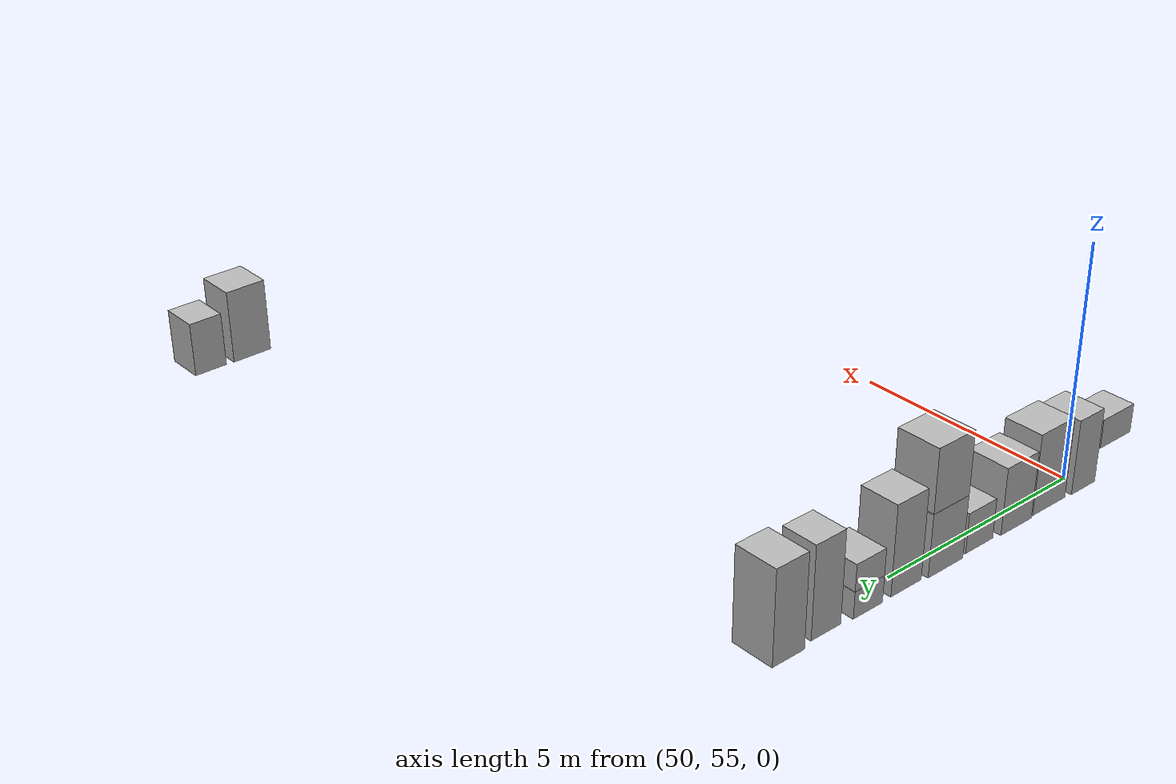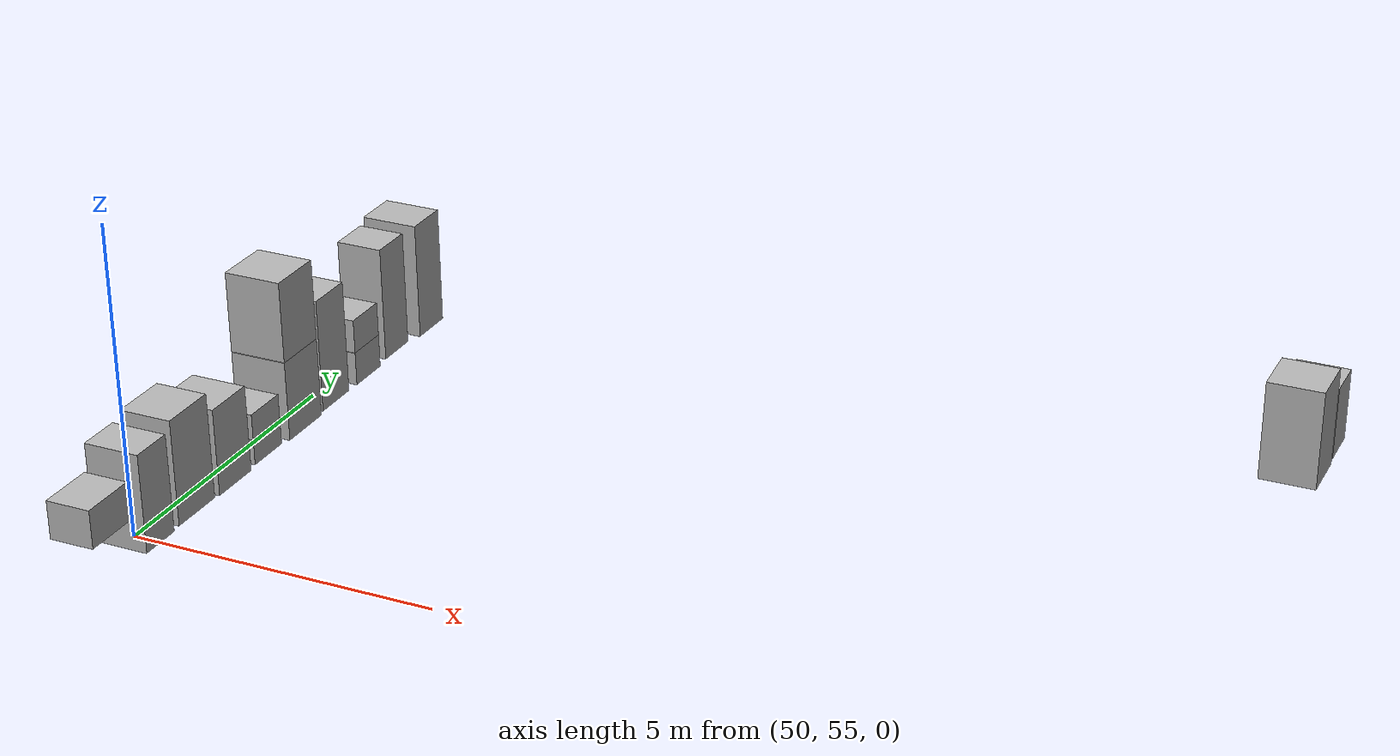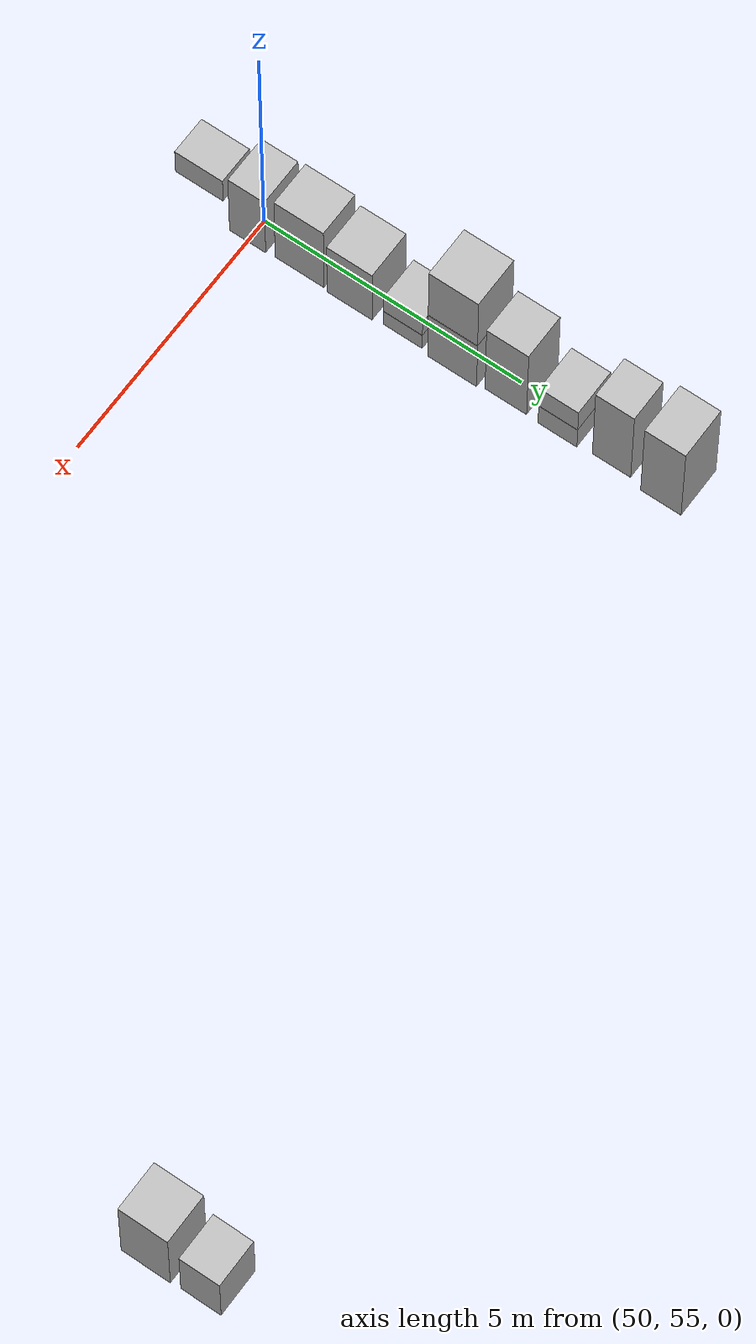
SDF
<sdf version="1.5">
 <world name="default">
  <model name="ground_plane">
   <static>true</static>
   <link name="link">
    <collision name="collision">
     <geometry><plane><normal>0 0 1</normal><size>250 250</size></plane></geometry>
     <surface><friction><ode><mu>1</mu><mu2>1</mu2></ode></friction></surface>
    </collision>
    <visual name="grass">
     <cast_shadows>false</cast_shadows>
     <geometry><mesh><uri>file://grass_plane/meshes/grass_plane.dae</uri></mesh></geometry>
    </visual>
   </link>
  </model>
  <model name="Cardboard_box_top_649">
   <link name="link_0">
    <pose>50 54 0.628202009845 0 0 0</pose>
    <inertial>
     <mass>1</mass>
     <inertia>
      <ixx>0.166667</ixx>
      <ixy>0</ixy>
      <ixz>0</ixz>
      <iyy>0.166667</iyy>
      <iyz>0</iyz>
      <izz>0.166667</izz>
     </inertia>
    </inertial>
    <collision name="collision">
     <geometry>
      <mesh>
       <uri>model://Cardboard_box/meshes/cardboard_box.dae</uri>
       <scale>1.8310984928 2.35704234418 1.57050502461</scale>
      </mesh>
     </geometry>
    </collision>
    <visual name="visual">
     <geometry>
      <mesh>
       <uri>model://Cardboard_box/meshes/cardboard_box.dae</uri>
       <scale>1.8310984928 2.35704234418 1.57050502461</scale>
      </mesh>
     </geometry>
    </visual>
   </link>
   <static>1</static>
  </model>
  <model name="Cardboard_box_650">
   <link name="link_0">
    <pose>50 55 0 0 0 0</pose>
    <inertial>
     <mass>1</mass>
     <inertia>
      <ixx>0.166667</ixx>
      <ixy>0</ixy>
      <ixz>0</ixz>
      <iyy>0.166667</iyy>
      <iyz>0</iyz>
      <izz>0.166667</izz>
     </inertia>
    </inertial>
    <collision name="collision">
     <geometry>
      <mesh>
       <uri>model://Cardboard_box/meshes/cardboard_box.dae</uri>
       <scale>2.28649709088 1.7889408172 4.07227117605</scale>
      </mesh>
     </geometry>
    </collision>
    <visual name="visual">
     <geometry>
      <mesh>
       <uri>model://Cardboard_box/meshes/cardboard_box.dae</uri>
       <scale>2.28649709088 1.7889408172 4.07227117605</scale>
      </mesh>
     </geometry>
    </visual>
   </link>
   <static>1</static>
  </model>
  <model name="Cardboard_box_651">
   <link name="link_0">
    <pose>50 56 0 0 0 0</pose>
    <inertial>
     <mass>1</mass>
     <inertia>
      <ixx>0.166667</ixx>
      <ixy>0</ixy>
      <ixz>0</ixz>
      <iyy>0.166667</iyy>
      <iyz>0</iyz>
      <izz>0.166667</izz>
     </inertia>
    </inertial>
    <collision name="collision">
     <geometry>
      <mesh>
       <uri>model://Cardboard_box/meshes/cardboard_box.dae</uri>
       <scale>2.15359185107 2.4092845548 4.40512411547</scale>
      </mesh>
     </geometry>
    </collision>
    <visual name="visual">
     <geometry>
      <mesh>
       <uri>model://Cardboard_box/meshes/cardboard_box.dae</uri>
       <scale>2.15359185107 2.4092845548 4.40512411547</scale>
      </mesh>
     </geometry>
    </visual>
   </link>
   <static>1</static>
  </model>
  <model name="Cardboard_box_652">
   <link name="link_0">
    <pose>50 57 0 0 0 0</pose>
    <inertial>
     <mass>1</mass>
     <inertia>
      <ixx>0.166667</ixx>
      <ixy>0</ixy>
      <ixz>0</ixz>
      <iyy>0.166667</iyy>
      <iyz>0</iyz>
      <izz>0.166667</izz>
     </inertia>
    </inertial>
    <collision name="collision">
     <geometry>
      <mesh>
       <uri>model://Cardboard_box/meshes/cardboard_box.dae</uri>
       <scale>2.31922763138 2.21604029452 3.63841716033</scale>
      </mesh>
     </geometry>
    </collision>
    <visual name="visual">
     <geometry>
      <mesh>
       <uri>model://Cardboard_box/meshes/cardboard_box.dae</uri>
       <scale>2.31922763138 2.21604029452 3.63841716033</scale>
      </mesh>
     </geometry>
    </visual>
   </link>
   <static>1</static>
  </model>
  <model name="Cardboard_box_653">
   <link name="link_0">
    <pose>50 58 0 0 0 0</pose>
    <inertial>
     <mass>1</mass>
     <inertia>
      <ixx>0.166667</ixx>
      <ixy>0</ixy>
      <ixz>0</ixz>
      <iyy>0.166667</iyy>
      <iyz>0</iyz>
      <izz>0.166667</izz>
     </inertia>
    </inertial>
    <collision name="collision">
     <geometry>
      <mesh>
       <uri>model://Cardboard_box/meshes/cardboard_box.dae</uri>
       <scale>2.09966503034 1.91816227631 1.07750691621</scale>
      </mesh>
     </geometry>
    </collision>
    <visual name="visual">
     <geometry>
      <mesh>
       <uri>model://Cardboard_box/meshes/cardboard_box.dae</uri>
       <scale>2.09966503034 1.91816227631 1.07750691621</scale>
      </mesh>
     </geometry>
    </visual>
   </link>
   <static>1</static>
  </model>
  <model name="Cardboard_box_top_653">
   <link name="link_0">
    <pose>50 58 0.431002766482 0 0 0</pose>
    <inertial>
     <mass>1</mass>
     <inertia>
      <ixx>0.166667</ixx>
      <ixy>0</ixy>
      <ixz>0</ixz>
      <iyy>0.166667</iyy>
      <iyz>0</iyz>
      <izz>0.166667</izz>
     </inertia>
    </inertial>
    <collision name="collision">
     <geometry>
      <mesh>
       <uri>model://Cardboard_box/meshes/cardboard_box.dae</uri>
       <scale>2.09966503034 1.91816227631 1.07750691621</scale>
      </mesh>
     </geometry>
    </collision>
    <visual name="visual">
     <geometry>
      <mesh>
       <uri>model://Cardboard_box/meshes/cardboard_box.dae</uri>
       <scale>2.09966503034 1.91816227631 1.07750691621</scale>
      </mesh>
     </geometry>
    </visual>
   </link>
   <static>1</static>
  </model>
  <model name="Cardboard_box_654">
   <link name="link_0">
    <pose>50 59 0 0 0 0</pose>
    <inertial>
     <mass>1</mass>
     <inertia>
      <ixx>0.166667</ixx>
      <ixy>0</ixy>
      <ixz>0</ixz>
      <iyy>0.166667</iyy>
      <iyz>0</iyz>
      <izz>0.166667</izz>
     </inertia>
    </inertial>
    <collision name="collision">
     <geometry>
      <mesh>
       <uri>model://Cardboard_box/meshes/cardboard_box.dae</uri>
       <scale>2.39934264226 2.37520904949 3.37899875647</scale>
      </mesh>
     </geometry>
    </collision>
    <visual name="visual">
     <geometry>
      <mesh>
       <uri>model://Cardboard_box/meshes/cardboard_box.dae</uri>
       <scale>2.39934264226 2.37520904949 3.37899875647</scale>
      </mesh>
     </geometry>
    </visual>
   </link>
   <static>1</static>
  </model>
  <model name="Cardboard_box_top_654">
   <link name="link_0">
    <pose>50 59 1.35159950259 0 0 0</pose>
    <inertial>
     <mass>1</mass>
     <inertia>
      <ixx>0.166667</ixx>
      <ixy>0</ixy>
      <ixz>0</ixz>
      <iyy>0.166667</iyy>
      <iyz>0</iyz>
      <izz>0.166667</izz>
     </inertia>
    </inertial>
    <collision name="collision">
     <geometry>
      <mesh>
       <uri>model://Cardboard_box/meshes/cardboard_box.dae</uri>
       <scale>2.39934264226 2.37520904949 3.37899875647</scale>
      </mesh>
     </geometry>
    </collision>
    <visual name="visual">
     <geometry>
      <mesh>
       <uri>model://Cardboard_box/meshes/cardboard_box.dae</uri>
       <scale>2.39934264226 2.37520904949 3.37899875647</scale>
      </mesh>
     </geometry>
    </visual>
   </link>
   <static>1</static>
  </model>
  <model name="Cardboard_box_655">
   <link name="link_0">
    <pose>50 60 0 0 0 0</pose>
    <inertial>
     <mass>1</mass>
     <inertia>
      <ixx>0.166667</ixx>
      <ixy>0</ixy>
      <ixz>0</ixz>
      <iyy>0.166667</iyy>
      <iyz>0</iyz>
      <izz>0.166667</izz>
     </inertia>
    </inertial>
    <collision name="collision">
     <geometry>
      <mesh>
       <uri>model://Cardboard_box/meshes/cardboard_box.dae</uri>
       <scale>2.15204382087 2.01277561581 4.83170556</scale>
      </mesh>
     </geometry>
    </collision>
    <visual name="visual">
     <geometry>
      <mesh>
       <uri>model://Cardboard_box/meshes/cardboard_box.dae</uri>
       <scale>2.15204382087 2.01277561581 4.83170556</scale>
      </mesh>
     </geometry>
    </visual>
   </link>
   <static>1</static>
  </model>
  <model name="Cardboard_box_656">
   <link name="link_0">
    <pose>50 61 0 0 0 0</pose>
    <inertial>
     <mass>1</mass>
     <inertia>
      <ixx>0.166667</ixx>
      <ixy>0</ixy>
      <ixz>0</ixz>
      <iyy>0.166667</iyy>
      <iyz>0</iyz>
      <izz>0.166667</izz>
     </inertia>
    </inertial>
    <collision name="collision">
     <geometry>
      <mesh>
       <uri>model://Cardboard_box/meshes/cardboard_box.dae</uri>
       <scale>2.21871606434 1.87160760017 1.43330199242</scale>
      </mesh>
     </geometry>
    </collision>
    <visual name="visual">
     <geometry>
      <mesh>
       <uri>model://Cardboard_box/meshes/cardboard_box.dae</uri>
       <scale>2.21871606434 1.87160760017 1.43330199242</scale>
      </mesh>
     </geometry>
    </visual>
   </link>
   <static>1</static>
  </model>
  <model name="Cardboard_box_top_656">
   <link name="link_0">
    <pose>50 61 0.573320796968 0 0 0</pose>
    <inertial>
     <mass>1</mass>
     <inertia>
      <ixx>0.166667</ixx>
      <ixy>0</ixy>
      <ixz>0</ixz>
      <iyy>0.166667</iyy>
      <iyz>0</iyz>
      <izz>0.166667</izz>
     </inertia>
    </inertial>
    <collision name="collision">
     <geometry>
      <mesh>
       <uri>model://Cardboard_box/meshes/cardboard_box.dae</uri>
       <scale>2.21871606434 1.87160760017 1.43330199242</scale>
      </mesh>
     </geometry>
    </collision>
    <visual name="visual">
     <geometry>
      <mesh>
       <uri>model://Cardboard_box/meshes/cardboard_box.dae</uri>
       <scale>2.21871606434 1.87160760017 1.43330199242</scale>
      </mesh>
     </geometry>
    </visual>
   </link>
   <static>1</static>
  </model>
  <model name="Cardboard_box_657">
   <link name="link_0">
    <pose>50 62 0 0 0 0</pose>
    <inertial>
     <mass>1</mass>
     <inertia>
      <ixx>0.166667</ixx>
      <ixy>0</ixy>
      <ixz>0</ixz>
      <iyy>0.166667</iyy>
      <iyz>0</iyz>
      <izz>0.166667</izz>
     </inertia>
    </inertial>
    <collision name="collision">
     <geometry>
      <mesh>
       <uri>model://Cardboard_box/meshes/cardboard_box.dae</uri>
       <scale>1.97526737373 1.83735151612 4.9353175351</scale>
      </mesh>
     </geometry>
    </collision>
    <visual name="visual">
     <geometry>
      <mesh>
       <uri>model://Cardboard_box/meshes/cardboard_box.dae</uri>
       <scale>1.97526737373 1.83735151612 4.9353175351</scale>
      </mesh>
     </geometry>
    </visual>
   </link>
   <static>1</static>
  </model>
  <model name="Cardboard_box_658">
   <link name="link_0">
    <pose>50 63 0 0 0 0</pose>
    <inertial>
     <mass>1</mass>
     <inertia>
      <ixx>0.166667</ixx>
      <ixy>0</ixy>
      <ixz>0</ixz>
      <iyy>0.166667</iyy>
      <iyz>0</iyz>
      <izz>0.166667</izz>
     </inertia>
    </inertial>
    <collision name="collision">
     <geometry>
      <mesh>
       <uri>model://Cardboard_box/meshes/cardboard_box.dae</uri>
       <scale>2.42535351557 1.93363019875 5.02807969639</scale>
      </mesh>
     </geometry>
    </collision>
    <visual name="visual">
     <geometry>
      <mesh>
       <uri>model://Cardboard_box/meshes/cardboard_box.dae</uri>
       <scale>2.42535351557 1.93363019875 5.02807969639</scale>
      </mesh>
     </geometry>
    </visual>
   </link>
   <static>1</static>
  </model>
  <model name="Cardboard_box_659">
   <link name="link_0">
    <pose>65 64 0 0 0 0</pose>
    <inertial>
     <mass>1</mass>
     <inertia>
      <ixx>0.166667</ixx>
      <ixy>0</ixy>
      <ixz>0</ixz>
      <iyy>0.166667</iyy>
      <iyz>0</iyz>
      <izz>0.166667</izz>
     </inertia>
    </inertial>
    <collision name="collision">
     <geometry>
      <mesh>
       <uri>model://Cardboard_box/meshes/cardboard_box.dae</uri>
       <scale>2.27958642241 2.2897192295 4.13252232506</scale>
      </mesh>
     </geometry>
    </collision>
    <visual name="visual">
     <geometry>
      <mesh>
       <uri>model://Cardboard_box/meshes/cardboard_box.dae</uri>
       <scale>2.27958642241 2.2897192295 4.13252232506</scale>
      </mesh>
     </geometry>
    </visual>
   </link>
   <static>1</static>
  </model>
  <model name="Cardboard_box_660">
   <link name="link_0">
    <pose>65 65 0 0 0 0</pose>
    <inertial>
     <mass>1</mass>
     <inertia>
      <ixx>0.166667</ixx>
      <ixy>0</ixy>
      <ixz>0</ixz>
      <iyy>0.166667</iyy>
      <iyz>0</iyz>
      <izz>0.166667</izz>
     </inertia>
    </inertial>
    <collision name="collision">
     <geometry>
      <mesh>
       <uri>model://Cardboard_box/meshes/cardboard_box.dae</uri>
       <scale>2.16586801178 1.87002822027 3.03629574922</scale>
      </mesh>
     </geometry>
    </collision>
    <visual name="visual">
     <geometry>
      <mesh>
       <uri>model://Cardboard_box/meshes/cardboard_box.dae</uri>
       <scale>2.16586801178 1.87002822027 3.03629574922</scale>
      </mesh>
     </geometry>
    </visual>
   </link>
   <static>1</static>
  </model>
 </world>
</sdf>
